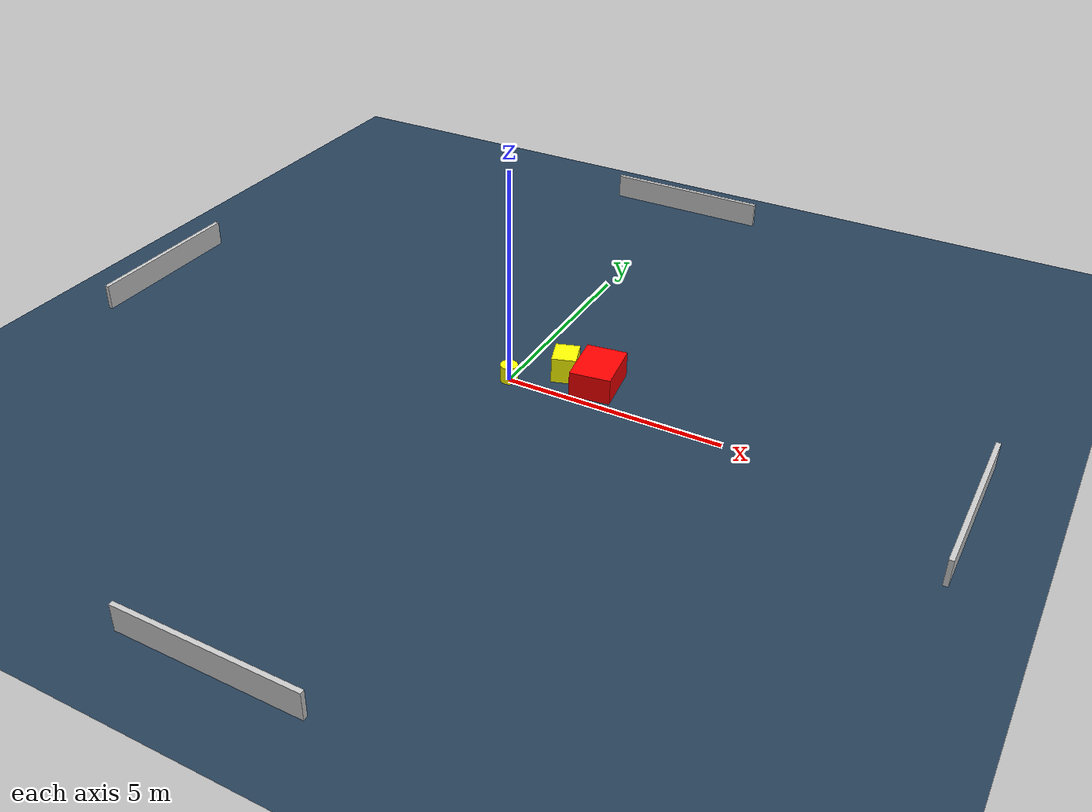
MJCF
<?xml version="1.0" ?>
<mujoco model="generated_environment">
  <option timestep="0.01" integrator="RK4" cone="elliptic"/>
  <default>
    <geom density="1"/>
  </default>
  <asset>
    <texture builtin="gradient" height="3072" name="skybox" rgb1="0.3 0.5 0.7" rgb2="0 0 0" type="skybox" width="512"/>
    <texture builtin="checker" height="300" name="groundplane" rgb1="0.2 0.3 0.4" rgb2="0.1 0.2 0.3" type="2d" width="300"/>
    <material name="groundplane" reflectance="0.2" texrepeat="5 5" texture="groundplane"/>
  </asset>
  <worldbody>
    <light dir="0 0 -1" directional="true" pos="0 0 1.5"/>
    <geom condim="3" friction="0.5 0.005 0.001" material="groundplane" name="floor" pos="0 0 0" size="0 0 0.05" type="plane"/>
    <body name="walls">
      <geom name="wall_1" condim="4" pos="-10.0 0.0 0.3" rgba="0.800000011920929 0.800000011920929 0.800000011920929 1.0" size="0.05 2.0 0.3" type="box"/>
      <geom name="wall_2" condim="4" pos="10.0 0.0 0.3" rgba="0.800000011920929 0.800000011920929 0.800000011920929 1.0" size="0.05 2.0 0.3" type="box"/>
      <geom name="wall_3" condim="4" pos="0.0 -10.0 0.3" rgba="0.800000011920929 0.800000011920929 0.800000011920929 1.0" size="2.0 0.05 0.3" type="box"/>
      <geom name="wall_4" condim="4" pos="0.0 10.0 0.3" rgba="0.800000011920929 0.800000011920929 0.800000011920929 1.0" size="2.0 0.05 0.3" type="box"/>
    </body>
    <body name="robot">
      <joint name="joint_x" type="slide" pos="0 0 0" axis="1 0 0"/>
      <joint name="joint_y" type="slide" pos="0 0 0" axis="0 1 0"/>
      <geom name="robot" type="cylinder" pos="0.0 0.0 0.2" size="0.2 0.2 0.0" mass="5.0" friction="1.0 0.005 0.0001" condim="4" rgba="1.0 1.0 0.0 1.0"/>
    </body>
    <body name="obstacle_1_movable">
      <geom name="obstacle_1_movable" condim="4" pos="0.9995844808202685 0.7786871740141565 0.3" euler="0 0 288.32049303389385" friction="0.0 0.005 0.001" rgba="1.0 1.0 0.0 1.0" size="0.3258414713498071 0.27483447875234557 0.3" type="box" mass="0.1"/>
      <joint type="free"/>
    </body>
    <body name="obstacle_2_static">
      <geom name="obstacle_2_static" condim="4" pos="1.8124590408560863 0.7575899669457622 0.3" euler="0 0 97.71746474678001" friction="0.0 0.005 0.001" rgba="1.0 0.0 0.0 1.0" size="0.6204088159137773 0.4632485839623353 0.3" type="box"/>
    </body>
  </worldbody>
  <actuator>
    <motor name="actuator_x" joint="joint_x" gear="1" ctrlrange="-1 1"/>
    <motor name="actuator_y" joint="joint_y" gear="1" ctrlrange="-1 1"/>
  </actuator>
</mujoco>
